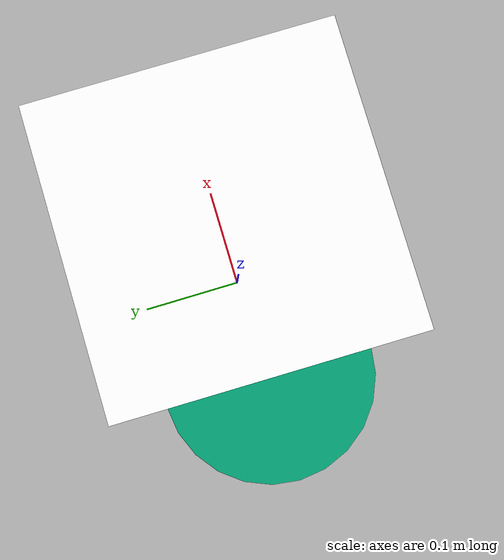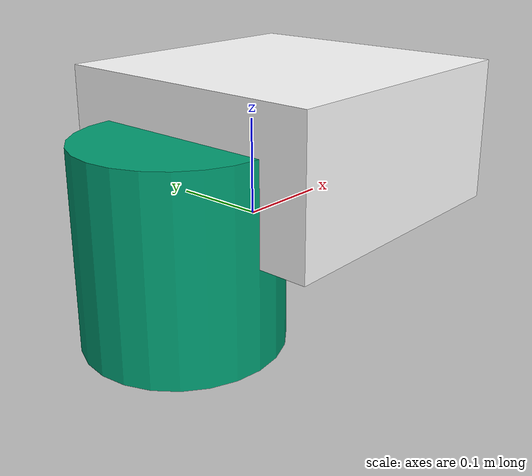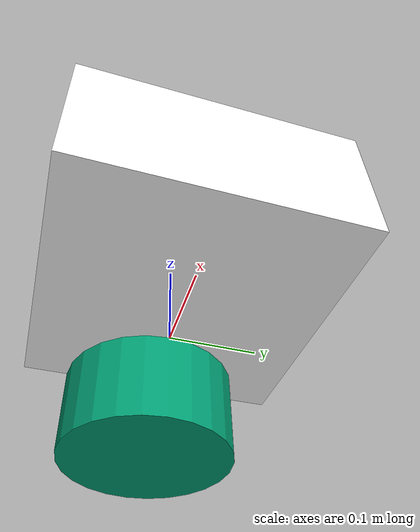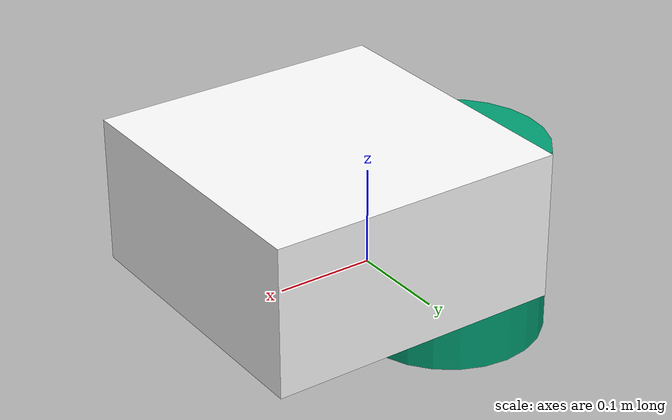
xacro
<?xml version="1.0"?>
<robot xmlns:xacro="http://www.ros.org/wiki/xacro">
  <xacro:include filename="inertial_macros.xacro"/>

  <material name="white">
    <color rgba="1 1 1 1"/>
  </material>

  <!-- Constants for robot dimensions -->
  <xacro:property name="wheel_radius" value="0.1"/>
  <xacro:property name="wheel_length" value="0.2"/>
  <xacro:property name="wheel_base" value="0.5"/>

  <!-- Base Link -->
  <link name="base_link">
  </link>

  <!-- Chassis Link -->
  <joint name="chassis_joint" type="fixed">
      <parent link="base_link"/>
      <child link="chassis"/>
      <origin xyz="-0.1 0 0"/>
  </joint>

  <link name="chassis">
      <visual>
          <origin xyz="0.15 0 0.075"/>
          <geometry>
              <box size="0.3 0.3 0.15"/>
          </geometry>
          <material name="white"/>
      </visual>
      <collision>
          <origin xyz="0.15 0 0.075"/>
          <geometry>
              <box size="0.3 0.3 0.15"/>
          </geometry>
      </collision>
      <inertial>
          <mass value="0.5"/>
          <origin xyz="0.15 0 0.075" rpy="0 0 0"/>
          <inertia ixx="0.01" ixy="0" ixz="0" iyy="0.01" iyz="0" izz="0.01"/>
      </inertial>
  </link>

  <gazebo reference="chassis">
      <material>Gazebo/White</material>
  </gazebo>

  <!-- Wheels -->
  <xacro:macro name="wheel" params="suffix">
      <joint name="wheel_joint_${suffix}" type="continuous">
          <parent link="chassis"/>
          <child link="wheel_link_${suffix}"/>
          <origin xyz="0 0 0" rpy="0 0 0"/>
          <axis xyz="0 0 1"/>
      </joint>

      <link name="wheel_link_${suffix}">
          <inertial>
              <mass value="0.1"/>
              <origin xyz="0 0 0" rpy="0 0 0"/>
              <inertia ixx="0.01" ixy="0" ixz="0" iyy="0.01" iyz="0" izz="0.01"/>
          </inertial>
          <visual>
              <origin xyz="0 0 0" rpy="0 0 0"/>
              <geometry>
                  <cylinder length="${wheel_length}" radius="${wheel_radius}"/>
              </geometry>
          </visual>
      </link>
  </xacro:macro>

  <!-- Instantiate wheels -->
  <xacro:wheel suffix="front_left"/>
  <xacro:wheel suffix="front_right"/>
  <xacro:wheel suffix="rear_left"/>
  <xacro:wheel suffix="rear_right"/>

</robot>
